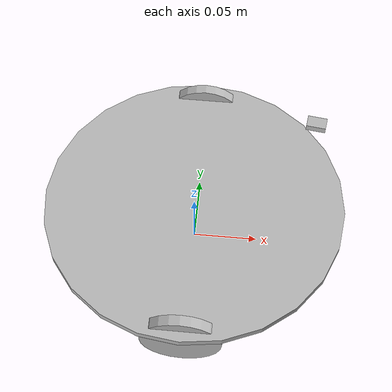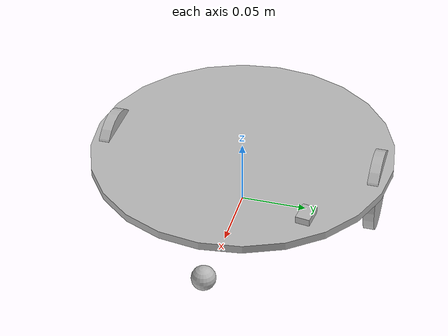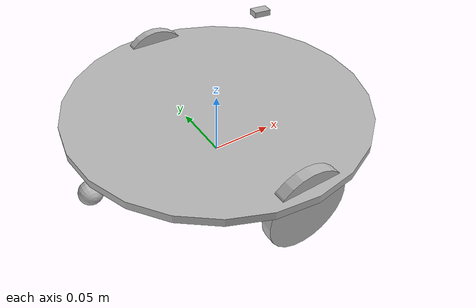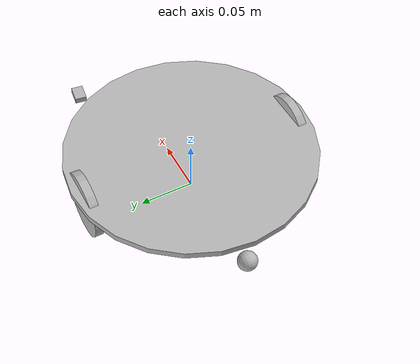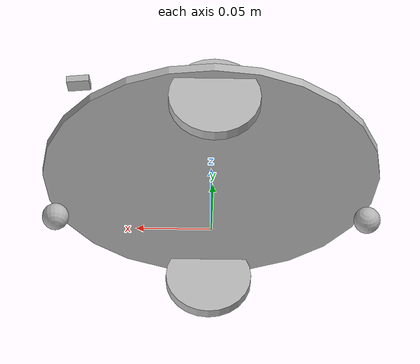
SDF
<sdf version='1.6'>
  <model name='prsg2_robot'>
    <link name='base_link'>
      <pose frame=''>0 0 0 0 -0 0</pose>
      <inertial>
        <pose frame=''>0.002703 0.002067 0.035061 0 -0 0</pose>
        <mass>3.3</mass>
        <inertia>
          <ixx>330.022</ixx>
          <ixy>-0.000590066</ixy>
          <ixz>-0.000302783</ixz>
          <iyy>330.003</iyy>
          <iyz>-0.000231495</iyz>
          <izz>330.024</izz>
        </inertia>
      </inertial>
      <collision name='base_link_collision'>
        <pose frame=''>0 0 0.047 0 -0 0</pose>
        <geometry>
          <cylinder>
            <length>0.006</length>
            <radius>0.1143</radius>
          </cylinder>
        </geometry>
      </collision>
      <collision name='base_link_fixed_joint_lump__front_caster_link_collision_1'>
        <pose frame=''>0.1043 0 0.009 0 -0 0</pose>
        <geometry>
          <sphere>
            <radius>0.009</radius>
          </sphere>
        </geometry>
      </collision>
      <collision name='base_link_fixed_joint_lump__ir_left_front_servo_link_collision_2'>
        <pose frame=''>0.089213 0.068208 0.069 0 0 -0.132645</pose>
        <geometry>
          <box>
            <size>0.015 0.01 0.005</size>
          </box>
        </geometry>
      </collision>
      <collision name='base_link_fixed_joint_lump__left_wheel_link_collision_3'>
        <pose frame=''>0 0.1025 0.03 1.5708 0 -0</pose>
        <geometry>
          <cylinder>
            <length>0.008</length>
            <radius>0.03</radius>
          </cylinder>
        </geometry>
      </collision>
      <collision name='base_link_fixed_joint_lump__rear_caster_link_collision_4'>
        <pose frame=''>-0.1043 0 0.009 1.5708 0 -0</pose>
        <geometry>
          <sphere>
            <radius>0.009</radius>
          </sphere>
        </geometry>
      </collision>
      <collision name='base_link_fixed_joint_lump__right_wheel_link_collision_5'>
        <pose frame=''>0 -0.1025 0.03 1.5708 -0 0</pose>
        <geometry>
          <cylinder>
            <length>0.008</length>
            <radius>0.03</radius>
          </cylinder>
        </geometry>
      </collision>
      <visual name='base_link_visual'>
        <pose frame=''>0 0 0.047 0 -0 0</pose>
        <geometry>
          <cylinder>
            <length>0.006</length>
            <radius>0.1143</radius>
          </cylinder>
        </geometry>
      </visual>
      <visual name='base_link_fixed_joint_lump__front_caster_link_visual_1'>
        <pose frame=''>0.1043 0 0.009 0 -0 0</pose>
        <geometry>
          <sphere>
            <radius>0.009</radius>
          </sphere>
        </geometry>
      </visual>
      <visual name='base_link_fixed_joint_lump__ir_left_front_servo_link_visual_2'>
        <pose frame=''>0.089213 0.068208 0.069 0 0 -0.132645</pose>
        <geometry>
          <box>
            <size>0.015 0.01 0.005</size>
          </box>
        </geometry>
      </visual>
      <visual name='base_link_fixed_joint_lump__left_wheel_link_visual_3'>
        <pose frame=''>0 0.1025 0.03 1.5708 0 -0</pose>
        <geometry>
          <cylinder>
            <length>0.008</length>
            <radius>0.03</radius>
          </cylinder>
        </geometry>
      </visual>
      <visual name='base_link_fixed_joint_lump__rear_caster_link_visual_4'>
        <pose frame=''>-0.1043 0 0.009 1.5708 0 -0</pose>
        <geometry>
          <sphere>
            <radius>0.009</radius>
          </sphere>
        </geometry>
      </visual>
      <visual name='base_link_fixed_joint_lump__right_wheel_link_visual_5'>
        <pose frame=''>0 -0.1025 0.03 1.5708 -0 0</pose>
        <geometry>
          <cylinder>
            <length>0.008</length>
            <radius>0.03</radius>
          </cylinder>
        </geometry>
      </visual>
    </link>
  </model>
</sdf>
